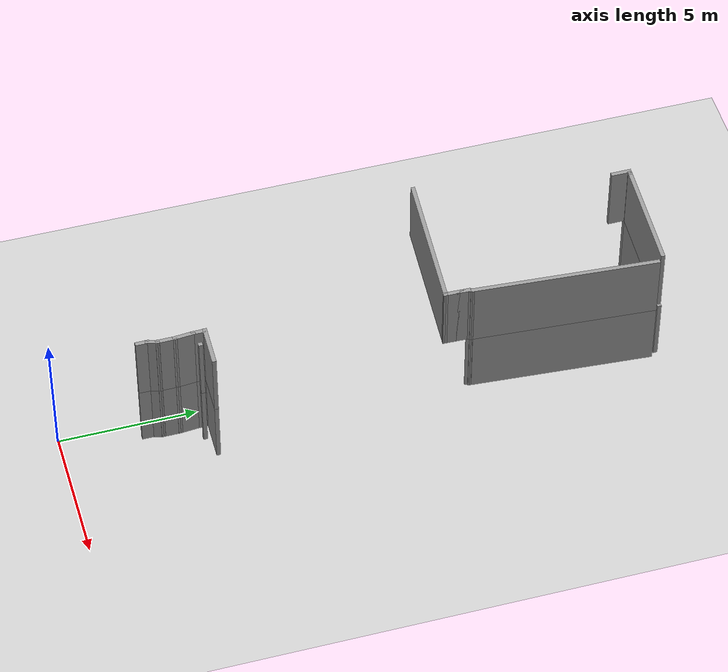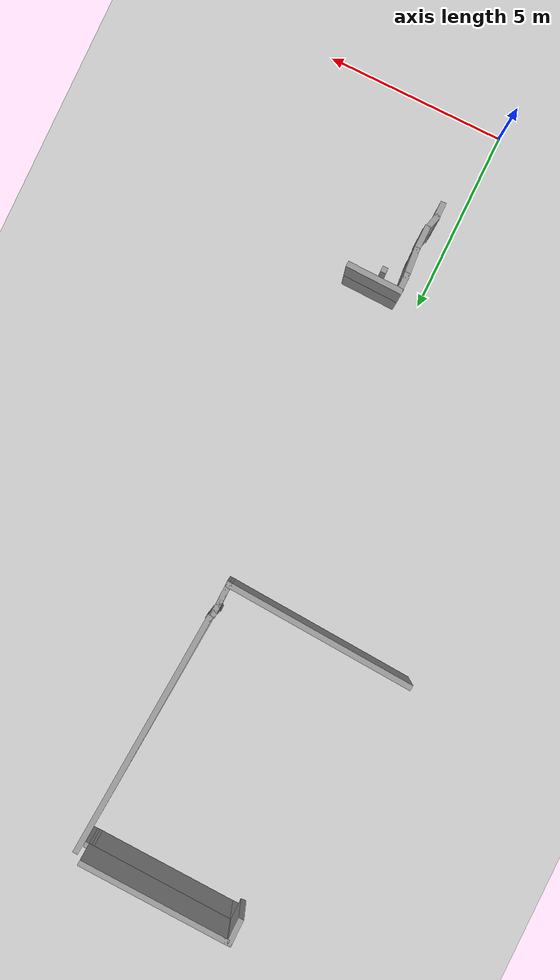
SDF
<sdf version="1.7">
 <world name="default">
  <model name="ground_plane">
   <static>1</static>
   <link name="link">
    <collision name="collision">
     <geometry><plane><normal>0 0 1</normal><size>100 100</size></plane></geometry>
     <surface>
      <contact><collide_bitmask>65535</collide_bitmask></contact>
      <friction><ode><mu>100</mu><mu2>50</mu2></ode></friction>
     </surface>
    </collision>
    <visual name="visual">
     <cast_shadows>0</cast_shadows>
     <geometry><plane><normal>0 0 1</normal><size>100 100</size></plane></geometry>
     <material>
      <script><uri>file://media/materials/scripts/gazebo.material</uri><name>Gazebo/Grey</name></script>
     </material>
    </visual>
   </link>
  </model>
  <model name="EnvDC01">
   <link name="Wall_100">
    <pose>-5.32892 11.2593 0 0 -0 0</pose>
    <visual name="Wall_100_Visual">
     <pose>0 0 1.25 0 -0 0</pose>
     <geometry><box><size>0.15 0.15 2.5</size></box></geometry>
     <material>
      <script><uri>file://media/materials/scripts/gazebo.material</uri><name>Gazebo/Grey</name></script>
      <ambient>1 1 1 1</ambient>
      <shader type="pixel"/>
     </material>
     <meta><layer>0</layer></meta>
    </visual>
    <collision name="Wall_100_Collision">
     <pose>0 0 1.25 0 -0 0</pose>
     <geometry><box><size>0.15 0.15 2.5</size></box></geometry>
     <surface>
      <friction>
       <ode><mu>1</mu><mu2>1</mu2><fdir1>0 0 0</fdir1><slip1>0</slip1><slip2>0</slip2></ode>
       <torsional>
        <coefficient>1</coefficient>
        <patch_radius>0</patch_radius>
        <surface_radius>0</surface_radius>
        <use_patch_radius>1</use_patch_radius>
        <ode><slip>0</slip></ode>
       </torsional>
      </friction>
      <bounce><restitution_coefficient>0</restitution_coefficient><threshold>1e+06</threshold></bounce>
      <contact>
       <collide_without_contact>0</collide_without_contact>
       <collide_without_contact_bitmask>1</collide_without_contact_bitmask>
       <collide_bitmask>1</collide_bitmask>
       <ode>
        <soft_cfm>0</soft_cfm>
        <soft_erp>0.2</soft_erp>
        <kp>1e+13</kp>
        <kd>1</kd>
        <max_vel>0.01</max_vel>
        <min_depth>0</min_depth>
       </ode>
       <bullet>
        <split_impulse>1</split_impulse>
        <split_impulse_penetration_threshold>-0.01</split_impulse_penetration_threshold>
        <soft_cfm>0</soft_cfm>
        <soft_erp>0.2</soft_erp>
        <kp>1e+13</kp>
        <kd>1</kd>
       </bullet>
      </contact>
     </surface>
    </collision>
   </link>
   <link name="Wall_102">
    <pose>-5.88941 11.3173 0 0 0 -1.5708</pose>
    <visual name="Wall_102_Visual">
     <pose>0 0 1.25 0 -0 0</pose>
     <geometry><box><size>0.5 0.15 2.5</size></box></geometry>
     <material>
      <script><uri>file://media/materials/scripts/gazebo.material</uri><name>Gazebo/Grey</name></script>
      <ambient>1 1 1 1</ambient>
      <shader type="pixel"/>
     </material>
     <meta><layer>0</layer></meta>
    </visual>
    <collision name="Wall_102_Collision">
     <pose>0 0 1.25 0 -0 0</pose>
     <geometry><box><size>0.5 0.15 2.5</size></box></geometry>
     <surface>
      <friction>
       <ode><mu>1</mu><mu2>1</mu2><fdir1>0 0 0</fdir1><slip1>0</slip1><slip2>0</slip2></ode>
       <torsional>
        <coefficient>1</coefficient>
        <patch_radius>0</patch_radius>
        <surface_radius>0</surface_radius>
        <use_patch_radius>1</use_patch_radius>
        <ode><slip>0</slip></ode>
       </torsional>
      </friction>
      <bounce><restitution_coefficient>0</restitution_coefficient><threshold>1e+06</threshold></bounce>
      <contact>
       <collide_without_contact>0</collide_without_contact>
       <collide_without_contact_bitmask>1</collide_without_contact_bitmask>
       <collide_bitmask>1</collide_bitmask>
       <ode>
        <soft_cfm>0</soft_cfm>
        <soft_erp>0.2</soft_erp>
        <kp>1e+13</kp>
        <kd>1</kd>
        <max_vel>0.01</max_vel>
        <min_depth>0</min_depth>
       </ode>
       <bullet>
        <split_impulse>1</split_impulse>
        <split_impulse_penetration_threshold>-0.01</split_impulse_penetration_threshold>
        <soft_cfm>0</soft_cfm>
        <soft_erp>0.2</soft_erp>
        <kp>1e+13</kp>
        <kd>1</kd>
       </bullet>
      </contact>
     </surface>
    </collision>
   </link>
   <link name="Wall_103">
    <pose>-5.86023 10.8116 0 0 0 -1.48755</pose>
    <visual name="Wall_103_Visual">
     <pose>0 0 1.25 0 -0 0</pose>
     <geometry><box><size>0.813803 0.15 2.5</size></box></geometry>
     <material>
      <script><uri>file://media/materials/scripts/gazebo.material</uri><name>Gazebo/Grey</name></script>
      <ambient>1 1 1 1</ambient>
      <shader type="pixel"/>
     </material>
     <meta><layer>0</layer></meta>
    </visual>
    <collision name="Wall_103_Collision">
     <pose>0 0 1.25 0 -0 0</pose>
     <geometry><box><size>0.813803 0.15 2.5</size></box></geometry>
     <surface>
      <friction>
       <ode><mu>1</mu><mu2>1</mu2><fdir1>0 0 0</fdir1><slip1>0</slip1><slip2>0</slip2></ode>
       <torsional>
        <coefficient>1</coefficient>
        <patch_radius>0</patch_radius>
        <surface_radius>0</surface_radius>
        <use_patch_radius>1</use_patch_radius>
        <ode><slip>0</slip></ode>
       </torsional>
      </friction>
      <bounce><restitution_coefficient>0</restitution_coefficient><threshold>1e+06</threshold></bounce>
      <contact>
       <collide_without_contact>0</collide_without_contact>
       <collide_without_contact_bitmask>1</collide_without_contact_bitmask>
       <collide_bitmask>1</collide_bitmask>
       <ode>
        <soft_cfm>0</soft_cfm>
        <soft_erp>0.2</soft_erp>
        <kp>1e+13</kp>
        <kd>1</kd>
        <max_vel>0.01</max_vel>
        <min_depth>0</min_depth>
       </ode>
       <bullet>
        <split_impulse>1</split_impulse>
        <split_impulse_penetration_threshold>-0.01</split_impulse_penetration_threshold>
        <soft_cfm>0</soft_cfm>
        <soft_erp>0.2</soft_erp>
        <kp>1e+13</kp>
        <kd>1</kd>
       </bullet>
      </contact>
     </surface>
    </collision>
   </link>
   <link name="Wall_104">
    <pose>-5.83264 10.1793 0 0 0 -1.5708</pose>
    <visual name="Wall_104_Visual">
     <pose>0 0 1.25 0 -0 0</pose>
     <geometry><box><size>0.75 0.15 2.5</size></box></geometry>
     <material>
      <script><uri>file://media/materials/scripts/gazebo.material</uri><name>Gazebo/Grey</name></script>
      <ambient>1 1 1 1</ambient>
      <shader type="pixel"/>
     </material>
     <meta><layer>0</layer></meta>
    </visual>
    <collision name="Wall_104_Collision">
     <pose>0 0 1.25 0 -0 0</pose>
     <geometry><box><size>0.75 0.15 2.5</size></box></geometry>
     <surface>
      <friction>
       <ode><mu>1</mu><mu2>1</mu2><fdir1>0 0 0</fdir1><slip1>0</slip1><slip2>0</slip2></ode>
       <torsional>
        <coefficient>1</coefficient>
        <patch_radius>0</patch_radius>
        <surface_radius>0</surface_radius>
        <use_patch_radius>1</use_patch_radius>
        <ode><slip>0</slip></ode>
       </torsional>
      </friction>
      <bounce><restitution_coefficient>0</restitution_coefficient><threshold>1e+06</threshold></bounce>
      <contact>
       <collide_without_contact>0</collide_without_contact>
       <collide_without_contact_bitmask>1</collide_without_contact_bitmask>
       <collide_bitmask>1</collide_bitmask>
       <ode>
        <soft_cfm>0</soft_cfm>
        <soft_erp>0.2</soft_erp>
        <kp>1e+13</kp>
        <kd>1</kd>
        <max_vel>0.01</max_vel>
        <min_depth>0</min_depth>
       </ode>
       <bullet>
        <split_impulse>1</split_impulse>
        <split_impulse_penetration_threshold>-0.01</split_impulse_penetration_threshold>
        <soft_cfm>0</soft_cfm>
        <soft_erp>0.2</soft_erp>
        <kp>1e+13</kp>
        <kd>1</kd>
       </bullet>
      </contact>
     </surface>
    </collision>
   </link>
   <link name="Wall_105">
    <pose>-5.87793 9.70942 0 0 0 -1.83143</pose>
    <visual name="Wall_105_Visual">
     <pose>0 0 1.25 0 -0 0</pose>
     <geometry><box><size>0.501524 0.15 2.5</size></box></geometry>
     <material>
      <script><uri>file://media/materials/scripts/gazebo.material</uri><name>Gazebo/Grey</name></script>
      <ambient>1 1 1 1</ambient>
      <shader type="pixel"/>
     </material>
     <meta><layer>0</layer></meta>
    </visual>
    <collision name="Wall_105_Collision">
     <pose>0 0 1.25 0 -0 0</pose>
     <geometry><box><size>0.501524 0.15 2.5</size></box></geometry>
     <surface>
      <friction>
       <ode><mu>1</mu><mu2>1</mu2><fdir1>0 0 0</fdir1><slip1>0</slip1><slip2>0</slip2></ode>
       <torsional>
        <coefficient>1</coefficient>
        <patch_radius>0</patch_radius>
        <surface_radius>0</surface_radius>
        <use_patch_radius>1</use_patch_radius>
        <ode><slip>0</slip></ode>
       </torsional>
      </friction>
      <bounce><restitution_coefficient>0</restitution_coefficient><threshold>1e+06</threshold></bounce>
      <contact>
       <collide_without_contact>0</collide_without_contact>
       <collide_without_contact_bitmask>1</collide_without_contact_bitmask>
       <collide_bitmask>1</collide_bitmask>
       <ode>
        <soft_cfm>0</soft_cfm>
        <soft_erp>0.2</soft_erp>
        <kp>1e+13</kp>
        <kd>1</kd>
        <max_vel>0.01</max_vel>
        <min_depth>0</min_depth>
       </ode>
       <bullet>
        <split_impulse>1</split_impulse>
        <split_impulse_penetration_threshold>-0.01</split_impulse_penetration_threshold>
        <soft_cfm>0</soft_cfm>
        <soft_erp>0.2</soft_erp>
        <kp>1e+13</kp>
        <kd>1</kd>
       </bullet>
      </contact>
     </surface>
    </collision>
   </link>
   <link name="Wall_106">
    <pose>-5.92322 9.3646 0 0 0 -1.5708</pose>
    <visual name="Wall_106_Visual">
     <pose>0 0 1.25 0 -0 0</pose>
     <geometry><box><size>0.5 0.15 2.5</size></box></geometry>
     <material>
      <script><uri>file://media/materials/scripts/gazebo.material</uri><name>Gazebo/Grey</name></script>
      <ambient>1 1 1 1</ambient>
      <shader type="pixel"/>
     </material>
     <meta><layer>0</layer></meta>
    </visual>
    <collision name="Wall_106_Collision">
     <pose>0 0 1.25 0 -0 0</pose>
     <geometry><box><size>0.5 0.15 2.5</size></box></geometry>
     <surface>
      <friction>
       <ode><mu>1</mu><mu2>1</mu2><fdir1>0 0 0</fdir1><slip1>0</slip1><slip2>0</slip2></ode>
       <torsional>
        <coefficient>1</coefficient>
        <patch_radius>0</patch_radius>
        <surface_radius>0</surface_radius>
        <use_patch_radius>1</use_patch_radius>
        <ode><slip>0</slip></ode>
       </torsional>
      </friction>
      <bounce><restitution_coefficient>0</restitution_coefficient><threshold>1e+06</threshold></bounce>
      <contact>
       <collide_without_contact>0</collide_without_contact>
       <collide_without_contact_bitmask>1</collide_without_contact_bitmask>
       <collide_bitmask>1</collide_bitmask>
       <ode>
        <soft_cfm>0</soft_cfm>
        <soft_erp>0.2</soft_erp>
        <kp>1e+13</kp>
        <kd>1</kd>
        <max_vel>0.01</max_vel>
        <min_depth>0</min_depth>
       </ode>
       <bullet>
        <split_impulse>1</split_impulse>
        <split_impulse_penetration_threshold>-0.01</split_impulse_penetration_threshold>
        <soft_cfm>0</soft_cfm>
        <soft_erp>0.2</soft_erp>
        <kp>1e+13</kp>
        <kd>1</kd>
       </bullet>
      </contact>
     </surface>
    </collision>
   </link>
   <link name="Wall_256">
    <pose>-9.08281 27.9178 0 0 -0 0</pose>
    <visual name="Wall_256_Visual">
     <pose>0 0 1.25 0 -0 0</pose>
     <geometry><box><size>0.25 0.15 2.5</size></box></geometry>
     <material>
      <script><uri>file://media/materials/scripts/gazebo.material</uri><name>Gazebo/Grey</name></script>
      <ambient>1 1 1 1</ambient>
      <shader type="pixel"/>
     </material>
     <meta><layer>0</layer></meta>
    </visual>
    <collision name="Wall_256_Collision">
     <pose>0 0 1.25 0 -0 0</pose>
     <geometry><box><size>0.25 0.15 2.5</size></box></geometry>
     <surface>
      <friction>
       <ode><mu>1</mu><mu2>1</mu2><fdir1>0 0 0</fdir1><slip1>0</slip1><slip2>0</slip2></ode>
       <torsional>
        <coefficient>1</coefficient>
        <patch_radius>0</patch_radius>
        <surface_radius>0</surface_radius>
        <use_patch_radius>1</use_patch_radius>
        <ode><slip>0</slip></ode>
       </torsional>
      </friction>
      <bounce><restitution_coefficient>0</restitution_coefficient><threshold>1e+06</threshold></bounce>
      <contact>
       <collide_without_contact>0</collide_without_contact>
       <collide_without_contact_bitmask>1</collide_without_contact_bitmask>
       <collide_bitmask>1</collide_bitmask>
       <ode>
        <soft_cfm>0</soft_cfm>
        <soft_erp>0.2</soft_erp>
        <kp>1e+13</kp>
        <kd>1</kd>
        <max_vel>0.01</max_vel>
        <min_depth>0</min_depth>
       </ode>
       <bullet>
        <split_impulse>1</split_impulse>
        <split_impulse_penetration_threshold>-0.01</split_impulse_penetration_threshold>
        <soft_cfm>0</soft_cfm>
        <soft_erp>0.2</soft_erp>
        <kp>1e+13</kp>
        <kd>1</kd>
       </bullet>
      </contact>
     </surface>
    </collision>
   </link>
   <link name="Wall_257">
    <pose>-7.00626 27.834 0 0 0 -0.041325</pose>
    <visual name="Wall_257_Visual">
     <pose>0 0 1.25 0 -0 0</pose>
     <geometry><box><size>4.20657 0.15 2.5</size></box></geometry>
     <material>
      <script><uri>file://media/materials/scripts/gazebo.material</uri><name>Gazebo/Grey</name></script>
      <ambient>1 1 1 1</ambient>
      <shader type="pixel"/>
     </material>
     <meta><layer>0</layer></meta>
    </visual>
    <collision name="Wall_257_Collision">
     <pose>0 0 1.25 0 -0 0</pose>
     <geometry><box><size>4.20657 0.15 2.5</size></box></geometry>
     <surface>
      <friction>
       <ode><mu>1</mu><mu2>1</mu2><fdir1>0 0 0</fdir1><slip1>0</slip1><slip2>0</slip2></ode>
       <torsional>
        <coefficient>1</coefficient>
        <patch_radius>0</patch_radius>
        <surface_radius>0</surface_radius>
        <use_patch_radius>1</use_patch_radius>
        <ode><slip>0</slip></ode>
       </torsional>
      </friction>
      <bounce><restitution_coefficient>0</restitution_coefficient><threshold>1e+06</threshold></bounce>
      <contact>
       <collide_without_contact>0</collide_without_contact>
       <collide_without_contact_bitmask>1</collide_without_contact_bitmask>
       <collide_bitmask>1</collide_bitmask>
       <ode>
        <soft_cfm>0</soft_cfm>
        <soft_erp>0.2</soft_erp>
        <kp>1e+13</kp>
        <kd>1</kd>
        <max_vel>0.01</max_vel>
        <min_depth>0</min_depth>
       </ode>
       <bullet>
        <split_impulse>1</split_impulse>
        <split_impulse_penetration_threshold>-0.01</split_impulse_penetration_threshold>
        <soft_cfm>0</soft_cfm>
        <soft_erp>0.2</soft_erp>
        <kp>1e+13</kp>
        <kd>1</kd>
       </bullet>
      </contact>
     </surface>
    </collision>
   </link>
   <link name="Wall_258">
    <pose>-4.9297 27.7502 0 0 -0 0</pose>
    <visual name="Wall_258_Visual">
     <pose>0 0 1.25 0 -0 0</pose>
     <geometry><box><size>0.25 0.15 2.5</size></box></geometry>
     <material>
      <script><uri>file://media/materials/scripts/gazebo.material</uri><name>Gazebo/Grey</name></script>
      <ambient>1 1 1 1</ambient>
      <shader type="pixel"/>
     </material>
     <meta><layer>0</layer></meta>
    </visual>
    <collision name="Wall_258_Collision">
     <pose>0 0 1.25 0 -0 0</pose>
     <geometry><box><size>0.25 0.15 2.5</size></box></geometry>
     <surface>
      <friction>
       <ode><mu>1</mu><mu2>1</mu2><fdir1>0 0 0</fdir1><slip1>0</slip1><slip2>0</slip2></ode>
       <torsional>
        <coefficient>1</coefficient>
        <patch_radius>0</patch_radius>
        <surface_radius>0</surface_radius>
        <use_patch_radius>1</use_patch_radius>
        <ode><slip>0</slip></ode>
       </torsional>
      </friction>
      <bounce><restitution_coefficient>0</restitution_coefficient><threshold>1e+06</threshold></bounce>
      <contact>
       <collide_without_contact>0</collide_without_contact>
       <collide_without_contact_bitmask>1</collide_without_contact_bitmask>
       <collide_bitmask>1</collide_bitmask>
       <ode>
        <soft_cfm>0</soft_cfm>
        <soft_erp>0.2</soft_erp>
        <kp>1e+13</kp>
        <kd>1</kd>
        <max_vel>0.01</max_vel>
        <min_depth>0</min_depth>
       </ode>
       <bullet>
        <split_impulse>1</split_impulse>
        <split_impulse_penetration_threshold>-0.01</split_impulse_penetration_threshold>
        <soft_cfm>0</soft_cfm>
        <soft_erp>0.2</soft_erp>
        <kp>1e+13</kp>
        <kd>1</kd>
       </bullet>
      </contact>
     </surface>
    </collision>
   </link>
   <link name="Wall_261">
    <pose>-4.96918 24.2046 0 0 0 -1.64252</pose>
    <visual name="Wall_261_Visual">
     <pose>0 0 1.25 0 -0 0</pose>
     <geometry><box><size>6.76321 0.15 2.5</size></box></geometry>
     <material>
      <script><uri>file://media/materials/scripts/gazebo.material</uri><name>Gazebo/Grey</name></script>
      <ambient>1 1 1 1</ambient>
      <shader type="pixel"/>
     </material>
     <meta><layer>0</layer></meta>
    </visual>
    <collision name="Wall_261_Collision">
     <pose>0 0 1.25 0 -0 0</pose>
     <geometry><box><size>6.76321 0.15 2.5</size></box></geometry>
     <surface>
      <friction>
       <ode><mu>1</mu><mu2>1</mu2><fdir1>0 0 0</fdir1><slip1>0</slip1><slip2>0</slip2></ode>
       <torsional>
        <coefficient>1</coefficient>
        <patch_radius>0</patch_radius>
        <surface_radius>0</surface_radius>
        <use_patch_radius>1</use_patch_radius>
        <ode><slip>0</slip></ode>
       </torsional>
      </friction>
      <bounce><restitution_coefficient>0</restitution_coefficient><threshold>1e+06</threshold></bounce>
      <contact>
       <collide_without_contact>0</collide_without_contact>
       <collide_without_contact_bitmask>1</collide_without_contact_bitmask>
       <collide_bitmask>1</collide_bitmask>
       <ode>
        <soft_cfm>0</soft_cfm>
        <soft_erp>0.2</soft_erp>
        <kp>1e+13</kp>
        <kd>1</kd>
        <max_vel>0.01</max_vel>
        <min_depth>0</min_depth>
       </ode>
       <bullet>
        <split_impulse>1</split_impulse>
        <split_impulse_penetration_threshold>-0.01</split_impulse_penetration_threshold>
        <soft_cfm>0</soft_cfm>
        <soft_erp>0.2</soft_erp>
        <kp>1e+13</kp>
        <kd>1</kd>
       </bullet>
      </contact>
     </surface>
    </collision>
   </link>
   <link name="Wall_262">
    <pose>-5.23115 20.8632 0 0 0 -2.0944</pose>
    <visual name="Wall_262_Visual">
     <pose>0 0 1.25 0 -0 0</pose>
     <geometry><box><size>0.25 0.15 2.5</size></box></geometry>
     <material>
      <script><uri>file://media/materials/scripts/gazebo.material</uri><name>Gazebo/Grey</name></script>
      <ambient>1 1 1 1</ambient>
      <shader type="pixel"/>
     </material>
     <meta><layer>0</layer></meta>
    </visual>
    <collision name="Wall_262_Collision">
     <pose>0 0 1.25 0 -0 0</pose>
     <geometry><box><size>0.25 0.15 2.5</size></box></geometry>
     <surface>
      <friction>
       <ode><mu>1</mu><mu2>1</mu2><fdir1>0 0 0</fdir1><slip1>0</slip1><slip2>0</slip2></ode>
       <torsional>
        <coefficient>1</coefficient>
        <patch_radius>0</patch_radius>
        <surface_radius>0</surface_radius>
        <use_patch_radius>1</use_patch_radius>
        <ode><slip>0</slip></ode>
       </torsional>
      </friction>
      <bounce><restitution_coefficient>0</restitution_coefficient><threshold>1e+06</threshold></bounce>
      <contact>
       <collide_without_contact>0</collide_without_contact>
       <collide_without_contact_bitmask>1</collide_without_contact_bitmask>
       <collide_bitmask>1</collide_bitmask>
       <ode>
        <soft_cfm>0</soft_cfm>
        <soft_erp>0.2</soft_erp>
        <kp>1e+13</kp>
        <kd>1</kd>
        <max_vel>0.01</max_vel>
        <min_depth>0</min_depth>
       </ode>
       <bullet>
        <split_impulse>1</split_impulse>
        <split_impulse_penetration_threshold>-0.01</split_impulse_penetration_threshold>
        <soft_cfm>0</soft_cfm>
        <soft_erp>0.2</soft_erp>
        <kp>1e+13</kp>
        <kd>1</kd>
       </bullet>
      </contact>
     </surface>
    </collision>
   </link>
   <link name="Wall_307">
    <pose>-5.20338 11.5416 2.5 0 -0 3.1167</pose>
    <visual name="Wall_307_Visual">
     <pose>0 0 1.25 0 -0 0</pose>
     <geometry><box><size>1.54368 0.15 2.5</size></box></geometry>
     <material>
      <script><uri>file://media/materials/scripts/gazebo.material</uri><name>Gazebo/Grey</name></script>
      <ambient>1 1 1 1</ambient>
      <shader type="pixel"/>
     </material>
     <meta><layer>1</layer></meta>
    </visual>
    <collision name="Wall_307_Collision">
     <pose>0 0 1.25 0 -0 0</pose>
     <geometry><box><size>1.54368 0.15 2.5</size></box></geometry>
     <surface>
      <friction>
       <ode><mu>1</mu><mu2>1</mu2><fdir1>0 0 0</fdir1><slip1>0</slip1><slip2>0</slip2></ode>
       <torsional>
        <coefficient>1</coefficient>
        <patch_radius>0</patch_radius>
        <surface_radius>0</surface_radius>
        <use_patch_radius>1</use_patch_radius>
        <ode><slip>0</slip></ode>
       </torsional>
      </friction>
      <bounce><restitution_coefficient>0</restitution_coefficient><threshold>1e+06</threshold></bounce>
      <contact>
       <collide_without_contact>0</collide_without_contact>
       <collide_without_contact_bitmask>1</collide_without_contact_bitmask>
       <collide_bitmask>1</collide_bitmask>
       <ode>
        <soft_cfm>0</soft_cfm>
        <soft_erp>0.2</soft_erp>
        <kp>1e+13</kp>
        <kd>1</kd>
        <max_vel>0.01</max_vel>
        <min_depth>0</min_depth>
       </ode>
       <bullet>
        <split_impulse>1</split_impulse>
        <split_impulse_penetration_threshold>-0.01</split_impulse_penetration_threshold>
        <soft_cfm>0</soft_cfm>
        <soft_erp>0.2</soft_erp>
        <kp>1e+13</kp>
        <kd>1</kd>
       </bullet>
      </contact>
     </surface>
    </collision>
   </link>
   <link name="Wall_308">
    <pose>-5.32892 11.2593 2.5 0 -0 0</pose>
    <visual name="Wall_308_Visual">
     <pose>0 0 1.25 0 -0 0</pose>
     <geometry><box><size>0.15 0.15 2.5</size></box></geometry>
     <material>
      <script><uri>file://media/materials/scripts/gazebo.material</uri><name>Gazebo/Grey</name></script>
      <ambient>1 1 1 1</ambient>
      <shader type="pixel"/>
     </material>
     <meta><layer>1</layer></meta>
    </visual>
    <collision name="Wall_308_Collision">
     <pose>0 0 1.25 0 -0 0</pose>
     <geometry><box><size>0.15 0.15 2.5</size></box></geometry>
     <surface>
      <friction>
       <ode><mu>1</mu><mu2>1</mu2><fdir1>0 0 0</fdir1><slip1>0</slip1><slip2>0</slip2></ode>
       <torsional>
        <coefficient>1</coefficient>
        <patch_radius>0</patch_radius>
        <surface_radius>0</surface_radius>
        <use_patch_radius>1</use_patch_radius>
        <ode><slip>0</slip></ode>
       </torsional>
      </friction>
      <bounce><restitution_coefficient>0</restitution_coefficient><threshold>1e+06</threshold></bounce>
      <contact>
       <collide_without_contact>0</collide_without_contact>
       <collide_without_contact_bitmask>1</collide_without_contact_bitmask>
       <collide_bitmask>1</collide_bitmask>
       <ode>
        <soft_cfm>0</soft_cfm>
        <soft_erp>0.2</soft_erp>
        <kp>1e+13</kp>
        <kd>1</kd>
        <max_vel>0.01</max_vel>
        <min_depth>0</min_depth>
       </ode>
       <bullet>
        <split_impulse>1</split_impulse>
        <split_impulse_penetration_threshold>-0.01</split_impulse_penetration_threshold>
        <soft_cfm>0</soft_cfm>
        <soft_erp>0.2</soft_erp>
        <kp>1e+13</kp>
        <kd>1</kd>
       </bullet>
      </contact>
     </surface>
    </collision>
   </link>
   <link name="Wall_309">
    <pose>-5.88941 11.3173 2.5 0 0 -1.5708</pose>
    <visual name="Wall_309_Visual">
     <pose>0 0 1.25 0 -0 0</pose>
     <geometry><box><size>0.5 0.15 2.5</size></box></geometry>
     <material>
      <script><uri>file://media/materials/scripts/gazebo.material</uri><name>Gazebo/Grey</name></script>
      <ambient>1 1 1 1</ambient>
      <shader type="pixel"/>
     </material>
     <meta><layer>1</layer></meta>
    </visual>
    <collision name="Wall_309_Collision">
     <pose>0 0 1.25 0 -0 0</pose>
     <geometry><box><size>0.5 0.15 2.5</size></box></geometry>
     <surface>
      <friction>
       <ode><mu>1</mu><mu2>1</mu2><fdir1>0 0 0</fdir1><slip1>0</slip1><slip2>0</slip2></ode>
       <torsional>
        <coefficient>1</coefficient>
        <patch_radius>0</patch_radius>
        <surface_radius>0</surface_radius>
        <use_patch_radius>1</use_patch_radius>
        <ode><slip>0</slip></ode>
       </torsional>
      </friction>
      <bounce><restitution_coefficient>0</restitution_coefficient><threshold>1e+06</threshold></bounce>
      <contact>
       <collide_without_contact>0</collide_without_contact>
       <collide_without_contact_bitmask>1</collide_without_contact_bitmask>
       <collide_bitmask>1</collide_bitmask>
       <ode>
        <soft_cfm>0</soft_cfm>
        <soft_erp>0.2</soft_erp>
        <kp>1e+13</kp>
        <kd>1</kd>
        <max_vel>0.01</max_vel>
        <min_depth>0</min_depth>
       </ode>
       <bullet>
        <split_impulse>1</split_impulse>
        <split_impulse_penetration_threshold>-0.01</split_impulse_penetration_threshold>
        <soft_cfm>0</soft_cfm>
        <soft_erp>0.2</soft_erp>
        <kp>1e+13</kp>
        <kd>1</kd>
       </bullet>
      </contact>
     </surface>
    </collision>
   </link>
   <link name="Wall_310">
    <pose>-5.86023 10.8116 2.5 0 0 -1.48755</pose>
    <visual name="Wall_310_Visual">
     <pose>0 0 1.25 0 -0 0</pose>
     <geometry><box><size>0.813803 0.15 2.5</size></box></geometry>
     <material>
      <script><uri>file://media/materials/scripts/gazebo.material</uri><name>Gazebo/Grey</name></script>
      <ambient>1 1 1 1</ambient>
      <shader type="pixel"/>
     </material>
     <meta><layer>1</layer></meta>
    </visual>
    <collision name="Wall_310_Collision">
     <pose>0 0 1.25 0 -0 0</pose>
     <geometry><box><size>0.813803 0.15 2.5</size></box></geometry>
     <surface>
      <friction>
       <ode><mu>1</mu><mu2>1</mu2><fdir1>0 0 0</fdir1><slip1>0</slip1><slip2>0</slip2></ode>
       <torsional>
        <coefficient>1</coefficient>
        <patch_radius>0</patch_radius>
        <surface_radius>0</surface_radius>
        <use_patch_radius>1</use_patch_radius>
        <ode><slip>0</slip></ode>
       </torsional>
      </friction>
      <bounce><restitution_coefficient>0</restitution_coefficient><threshold>1e+06</threshold></bounce>
      <contact>
       <collide_without_contact>0</collide_without_contact>
       <collide_without_contact_bitmask>1</collide_without_contact_bitmask>
       <collide_bitmask>1</collide_bitmask>
       <ode>
        <soft_cfm>0</soft_cfm>
        <soft_erp>0.2</soft_erp>
        <kp>1e+13</kp>
        <kd>1</kd>
        <max_vel>0.01</max_vel>
        <min_depth>0</min_depth>
       </ode>
       <bullet>
        <split_impulse>1</split_impulse>
        <split_impulse_penetration_threshold>-0.01</split_impulse_penetration_threshold>
        <soft_cfm>0</soft_cfm>
        <soft_erp>0.2</soft_erp>
        <kp>1e+13</kp>
        <kd>1</kd>
       </bullet>
      </contact>
     </surface>
    </collision>
   </link>
   <link name="Wall_311">
    <pose>-5.83264 10.1793 2.5 0 0 -1.5708</pose>
    <visual name="Wall_311_Visual">
     <pose>0 0 1.25 0 -0 0</pose>
     <geometry><box><size>0.75 0.15 2.5</size></box></geometry>
     <material>
      <script><uri>file://media/materials/scripts/gazebo.material</uri><name>Gazebo/Grey</name></script>
      <ambient>1 1 1 1</ambient>
      <shader type="pixel"/>
     </material>
     <meta><layer>1</layer></meta>
    </visual>
    <collision name="Wall_311_Collision">
     <pose>0 0 1.25 0 -0 0</pose>
     <geometry><box><size>0.75 0.15 2.5</size></box></geometry>
     <surface>
      <friction>
       <ode><mu>1</mu><mu2>1</mu2><fdir1>0 0 0</fdir1><slip1>0</slip1><slip2>0</slip2></ode>
       <torsional>
        <coefficient>1</coefficient>
        <patch_radius>0</patch_radius>
        <surface_radius>0</surface_radius>
        <use_patch_radius>1</use_patch_radius>
        <ode><slip>0</slip></ode>
       </torsional>
      </friction>
      <bounce><restitution_coefficient>0</restitution_coefficient><threshold>1e+06</threshold></bounce>
      <contact>
       <collide_without_contact>0</collide_without_contact>
       <collide_without_contact_bitmask>1</collide_without_contact_bitmask>
       <collide_bitmask>1</collide_bitmask>
       <ode>
        <soft_cfm>0</soft_cfm>
        <soft_erp>0.2</soft_erp>
        <kp>1e+13</kp>
        <kd>1</kd>
        <max_vel>0.01</max_vel>
        <min_depth>0</min_depth>
       </ode>
       <bullet>
        <split_impulse>1</split_impulse>
        <split_impulse_penetration_threshold>-0.01</split_impulse_penetration_threshold>
        <soft_cfm>0</soft_cfm>
        <soft_erp>0.2</soft_erp>
        <kp>1e+13</kp>
        <kd>1</kd>
       </bullet>
      </contact>
     </surface>
    </collision>
   </link>
   <link name="Wall_312">
    <pose>-5.87793 9.70942 2.5 0 0 -1.83143</pose>
    <visual name="Wall_312_Visual">
     <pose>0 0 1.25 0 -0 0</pose>
     <geometry><box><size>0.501524 0.15 2.5</size></box></geometry>
     <material>
      <script><uri>file://media/materials/scripts/gazebo.material</uri><name>Gazebo/Grey</name></script>
      <ambient>1 1 1 1</ambient>
      <shader type="pixel"/>
     </material>
     <meta><layer>1</layer></meta>
    </visual>
    <collision name="Wall_312_Collision">
     <pose>0 0 1.25 0 -0 0</pose>
     <geometry><box><size>0.501524 0.15 2.5</size></box></geometry>
     <surface>
      <friction>
       <ode><mu>1</mu><mu2>1</mu2><fdir1>0 0 0</fdir1><slip1>0</slip1><slip2>0</slip2></ode>
       <torsional>
        <coefficient>1</coefficient>
        <patch_radius>0</patch_radius>
        <surface_radius>0</surface_radius>
        <use_patch_radius>1</use_patch_radius>
        <ode><slip>0</slip></ode>
       </torsional>
      </friction>
      <bounce><restitution_coefficient>0</restitution_coefficient><threshold>1e+06</threshold></bounce>
      <contact>
       <collide_without_contact>0</collide_without_contact>
       <collide_without_contact_bitmask>1</collide_without_contact_bitmask>
       <collide_bitmask>1</collide_bitmask>
       <ode>
        <soft_cfm>0</soft_cfm>
        <soft_erp>0.2</soft_erp>
        <kp>1e+13</kp>
        <kd>1</kd>
        <max_vel>0.01</max_vel>
        <min_depth>0</min_depth>
       </ode>
       <bullet>
        <split_impulse>1</split_impulse>
        <split_impulse_penetration_threshold>-0.01</split_impulse_penetration_threshold>
        <soft_cfm>0</soft_cfm>
        <soft_erp>0.2</soft_erp>
        <kp>1e+13</kp>
        <kd>1</kd>
       </bullet>
      </contact>
     </surface>
    </collision>
   </link>
   <link name="Wall_313">
    <pose>-5.92322 9.3646 2.5 0 0 -1.5708</pose>
    <visual name="Wall_313_Visual">
     <pose>0 0 1.25 0 -0 0</pose>
     <geometry><box><size>0.5 0.15 2.5</size></box></geometry>
     <material>
      <script><uri>file://media/materials/scripts/gazebo.material</uri><name>Gazebo/Grey</name></script>
      <ambient>1 1 1 1</ambient>
      <shader type="pixel"/>
     </material>
     <meta><layer>1</layer></meta>
    </visual>
    <collision name="Wall_313_Collision">
     <pose>0 0 1.25 0 -0 0</pose>
     <geometry><box><size>0.5 0.15 2.5</size></box></geometry>
     <surface>
      <friction>
       <ode><mu>1</mu><mu2>1</mu2><fdir1>0 0 0</fdir1><slip1>0</slip1><slip2>0</slip2></ode>
       <torsional>
        <coefficient>1</coefficient>
        <patch_radius>0</patch_radius>
        <surface_radius>0</surface_radius>
        <use_patch_radius>1</use_patch_radius>
        <ode><slip>0</slip></ode>
       </torsional>
      </friction>
      <bounce><restitution_coefficient>0</restitution_coefficient><threshold>1e+06</threshold></bounce>
      <contact>
       <collide_without_contact>0</collide_without_contact>
       <collide_without_contact_bitmask>1</collide_without_contact_bitmask>
       <collide_bitmask>1</collide_bitmask>
       <ode>
        <soft_cfm>0</soft_cfm>
        <soft_erp>0.2</soft_erp>
        <kp>1e+13</kp>
        <kd>1</kd>
        <max_vel>0.01</max_vel>
        <min_depth>0</min_depth>
       </ode>
       <bullet>
        <split_impulse>1</split_impulse>
        <split_impulse_penetration_threshold>-0.01</split_impulse_penetration_threshold>
        <soft_cfm>0</soft_cfm>
        <soft_erp>0.2</soft_erp>
        <kp>1e+13</kp>
        <kd>1</kd>
       </bullet>
      </contact>
     </surface>
    </collision>
   </link>
   <link name="Wall_416">
    <pose>-9.13281 27.6178 2.5 0 -0 1.5708</pose>
    <visual name="Wall_416_Visual">
     <pose>0 0 1.25 0 -0 0</pose>
     <geometry><box><size>0.75 0.15 2.5</size></box></geometry>
     <material>
      <script><uri>file://media/materials/scripts/gazebo.material</uri><name>Gazebo/Grey</name></script>
      <ambient>1 1 1 1</ambient>
      <shader type="pixel"/>
     </material>
     <meta><layer>1</layer></meta>
    </visual>
    <collision name="Wall_416_Collision">
     <pose>0 0 1.25 0 -0 0</pose>
     <geometry><box><size>0.75 0.15 2.5</size></box></geometry>
     <surface>
      <friction>
       <ode><mu>1</mu><mu2>1</mu2><fdir1>0 0 0</fdir1><slip1>0</slip1><slip2>0</slip2></ode>
       <torsional>
        <coefficient>1</coefficient>
        <patch_radius>0</patch_radius>
        <surface_radius>0</surface_radius>
        <use_patch_radius>1</use_patch_radius>
        <ode><slip>0</slip></ode>
       </torsional>
      </friction>
      <bounce><restitution_coefficient>0</restitution_coefficient><threshold>1e+06</threshold></bounce>
      <contact>
       <collide_without_contact>0</collide_without_contact>
       <collide_without_contact_bitmask>1</collide_without_contact_bitmask>
       <collide_bitmask>1</collide_bitmask>
       <ode>
        <soft_cfm>0</soft_cfm>
        <soft_erp>0.2</soft_erp>
        <kp>1e+13</kp>
        <kd>1</kd>
        <max_vel>0.01</max_vel>
        <min_depth>0</min_depth>
       </ode>
       <bullet>
        <split_impulse>1</split_impulse>
        <split_impulse_penetration_threshold>-0.01</split_impulse_penetration_threshold>
        <soft_cfm>0</soft_cfm>
        <soft_erp>0.2</soft_erp>
        <kp>1e+13</kp>
        <kd>1</kd>
       </bullet>
      </contact>
     </surface>
    </collision>
   </link>
   <link name="Wall_417">
    <pose>-9.08281 27.9178 2.5 0 -0 0</pose>
    <visual name="Wall_417_Visual">
     <pose>0 0 1.25 0 -0 0</pose>
     <geometry><box><size>0.25 0.15 2.5</size></box></geometry>
     <material>
      <script><uri>file://media/materials/scripts/gazebo.material</uri><name>Gazebo/Grey</name></script>
      <ambient>1 1 1 1</ambient>
      <shader type="pixel"/>
     </material>
     <meta><layer>1</layer></meta>
    </visual>
    <collision name="Wall_417_Collision">
     <pose>0 0 1.25 0 -0 0</pose>
     <geometry><box><size>0.25 0.15 2.5</size></box></geometry>
     <surface>
      <friction>
       <ode><mu>1</mu><mu2>1</mu2><fdir1>0 0 0</fdir1><slip1>0</slip1><slip2>0</slip2></ode>
       <torsional>
        <coefficient>1</coefficient>
        <patch_radius>0</patch_radius>
        <surface_radius>0</surface_radius>
        <use_patch_radius>1</use_patch_radius>
        <ode><slip>0</slip></ode>
       </torsional>
      </friction>
      <bounce><restitution_coefficient>0</restitution_coefficient><threshold>1e+06</threshold></bounce>
      <contact>
       <collide_without_contact>0</collide_without_contact>
       <collide_without_contact_bitmask>1</collide_without_contact_bitmask>
       <collide_bitmask>1</collide_bitmask>
       <ode>
        <soft_cfm>0</soft_cfm>
        <soft_erp>0.2</soft_erp>
        <kp>1e+13</kp>
        <kd>1</kd>
        <max_vel>0.01</max_vel>
        <min_depth>0</min_depth>
       </ode>
       <bullet>
        <split_impulse>1</split_impulse>
        <split_impulse_penetration_threshold>-0.01</split_impulse_penetration_threshold>
        <soft_cfm>0</soft_cfm>
        <soft_erp>0.2</soft_erp>
        <kp>1e+13</kp>
        <kd>1</kd>
       </bullet>
      </contact>
     </surface>
    </collision>
   </link>
   <link name="Wall_418">
    <pose>-7.00626 27.834 2.5 0 0 -0.041325</pose>
    <visual name="Wall_418_Visual">
     <pose>0 0 1.25 0 -0 0</pose>
     <geometry><box><size>4.20657 0.15 2.5</size></box></geometry>
     <material>
      <script><uri>file://media/materials/scripts/gazebo.material</uri><name>Gazebo/Grey</name></script>
      <ambient>1 1 1 1</ambient>
      <shader type="pixel"/>
     </material>
     <meta><layer>1</layer></meta>
    </visual>
    <collision name="Wall_418_Collision">
     <pose>0 0 1.25 0 -0 0</pose>
     <geometry><box><size>4.20657 0.15 2.5</size></box></geometry>
     <surface>
      <friction>
       <ode><mu>1</mu><mu2>1</mu2><fdir1>0 0 0</fdir1><slip1>0</slip1><slip2>0</slip2></ode>
       <torsional>
        <coefficient>1</coefficient>
        <patch_radius>0</patch_radius>
        <surface_radius>0</surface_radius>
        <use_patch_radius>1</use_patch_radius>
        <ode><slip>0</slip></ode>
       </torsional>
      </friction>
      <bounce><restitution_coefficient>0</restitution_coefficient><threshold>1e+06</threshold></bounce>
      <contact>
       <collide_without_contact>0</collide_without_contact>
       <collide_without_contact_bitmask>1</collide_without_contact_bitmask>
       <collide_bitmask>1</collide_bitmask>
       <ode>
        <soft_cfm>0</soft_cfm>
        <soft_erp>0.2</soft_erp>
        <kp>1e+13</kp>
        <kd>1</kd>
        <max_vel>0.01</max_vel>
        <min_depth>0</min_depth>
       </ode>
       <bullet>
        <split_impulse>1</split_impulse>
        <split_impulse_penetration_threshold>-0.01</split_impulse_penetration_threshold>
        <soft_cfm>0</soft_cfm>
        <soft_erp>0.2</soft_erp>
        <kp>1e+13</kp>
        <kd>1</kd>
       </bullet>
      </contact>
     </surface>
    </collision>
   </link>
   <link name="Wall_421">
    <pose>-4.95651 24.2016 2.5 0 0 -1.63864</pose>
    <visual name="Wall_421_Visual">
     <pose>0 0 1.25 0 -0 0</pose>
     <geometry><box><size>6.76739 0.15 2.5</size></box></geometry>
     <material>
      <script><uri>file://media/materials/scripts/gazebo.material</uri><name>Gazebo/Grey</name></script>
      <ambient>1 1 1 1</ambient>
      <shader type="pixel"/>
     </material>
     <meta><layer>1</layer></meta>
    </visual>
    <collision name="Wall_421_Collision">
     <pose>0 0 1.25 0 -0 0</pose>
     <geometry><box><size>6.76739 0.15 2.5</size></box></geometry>
     <surface>
      <friction>
       <ode><mu>1</mu><mu2>1</mu2><fdir1>0 0 0</fdir1><slip1>0</slip1><slip2>0</slip2></ode>
       <torsional>
        <coefficient>1</coefficient>
        <patch_radius>0</patch_radius>
        <surface_radius>0</surface_radius>
        <use_patch_radius>1</use_patch_radius>
        <ode><slip>0</slip></ode>
       </torsional>
      </friction>
      <bounce><restitution_coefficient>0</restitution_coefficient><threshold>1e+06</threshold></bounce>
      <contact>
       <collide_without_contact>0</collide_without_contact>
       <collide_without_contact_bitmask>1</collide_without_contact_bitmask>
       <collide_bitmask>1</collide_bitmask>
       <ode>
        <soft_cfm>0</soft_cfm>
        <soft_erp>0.2</soft_erp>
        <kp>1e+13</kp>
        <kd>1</kd>
        <max_vel>0.01</max_vel>
        <min_depth>0</min_depth>
       </ode>
       <bullet>
        <split_impulse>1</split_impulse>
        <split_impulse_penetration_threshold>-0.01</split_impulse_penetration_threshold>
        <soft_cfm>0</soft_cfm>
        <soft_erp>0.2</soft_erp>
        <kp>1e+13</kp>
        <kd>1</kd>
       </bullet>
      </contact>
     </surface>
    </collision>
   </link>
   <link name="Wall_422">
    <pose>-5.20581 20.8316 2.5 0 0 -1.93303</pose>
    <visual name="Wall_422_Visual">
     <pose>0 0 1.25 0 -0 0</pose>
     <geometry><box><size>0.291098 0.15 2.5</size></box></geometry>
     <material>
      <script><uri>file://media/materials/scripts/gazebo.material</uri><name>Gazebo/Grey</name></script>
      <ambient>1 1 1 1</ambient>
      <shader type="pixel"/>
     </material>
     <meta><layer>1</layer></meta>
    </visual>
    <collision name="Wall_422_Collision">
     <pose>0 0 1.25 0 -0 0</pose>
     <geometry><box><size>0.291098 0.15 2.5</size></box></geometry>
     <surface>
      <friction>
       <ode><mu>1</mu><mu2>1</mu2><fdir1>0 0 0</fdir1><slip1>0</slip1><slip2>0</slip2></ode>
       <torsional>
        <coefficient>1</coefficient>
        <patch_radius>0</patch_radius>
        <surface_radius>0</surface_radius>
        <use_patch_radius>1</use_patch_radius>
        <ode><slip>0</slip></ode>
       </torsional>
      </friction>
      <bounce><restitution_coefficient>0</restitution_coefficient><threshold>1e+06</threshold></bounce>
      <contact>
       <collide_without_contact>0</collide_without_contact>
       <collide_without_contact_bitmask>1</collide_without_contact_bitmask>
       <collide_bitmask>1</collide_bitmask>
       <ode>
        <soft_cfm>0</soft_cfm>
        <soft_erp>0.2</soft_erp>
        <kp>1e+13</kp>
        <kd>1</kd>
        <max_vel>0.01</max_vel>
        <min_depth>0</min_depth>
       </ode>
       <bullet>
        <split_impulse>1</split_impulse>
        <split_impulse_penetration_threshold>-0.01</split_impulse_penetration_threshold>
        <soft_cfm>0</soft_cfm>
        <soft_erp>0.2</soft_erp>
        <kp>1e+13</kp>
        <kd>1</kd>
       </bullet>
      </contact>
     </surface>
    </collision>
   </link>
   <link name="Wall_428">
    <pose>-7.81335 20.1117 2.5 0 0 -0.064207</pose>
    <visual name="Wall_428_Visual">
     <pose>0 0 1.25 0 -0 0</pose>
     <geometry><box><size>5.27495 0.15 2.5</size></box></geometry>
     <material>
      <script><uri>file://media/materials/scripts/gazebo.material</uri><name>Gazebo/Grey</name></script>
      <ambient>1 1 1 1</ambient>
      <shader type="pixel"/>
     </material>
     <meta><layer>1</layer></meta>
    </visual>
    <collision name="Wall_428_Collision">
     <pose>0 0 1.25 0 -0 0</pose>
     <geometry><box><size>5.27495 0.15 2.5</size></box></geometry>
     <surface>
      <friction>
       <ode><mu>1</mu><mu2>1</mu2><fdir1>0 0 0</fdir1><slip1>0</slip1><slip2>0</slip2></ode>
       <torsional>
        <coefficient>1</coefficient>
        <patch_radius>0</patch_radius>
        <surface_radius>0</surface_radius>
        <use_patch_radius>1</use_patch_radius>
        <ode><slip>0</slip></ode>
       </torsional>
      </friction>
      <bounce><restitution_coefficient>0</restitution_coefficient><threshold>1e+06</threshold></bounce>
      <contact>
       <collide_without_contact>0</collide_without_contact>
       <collide_without_contact_bitmask>1</collide_without_contact_bitmask>
       <collide_bitmask>1</collide_bitmask>
       <ode>
        <soft_cfm>0</soft_cfm>
        <soft_erp>0.2</soft_erp>
        <kp>1e+13</kp>
        <kd>1</kd>
        <max_vel>0.01</max_vel>
        <min_depth>0</min_depth>
       </ode>
       <bullet>
        <split_impulse>1</split_impulse>
        <split_impulse_penetration_threshold>-0.01</split_impulse_penetration_threshold>
        <soft_cfm>0</soft_cfm>
        <soft_erp>0.2</soft_erp>
        <kp>1e+13</kp>
        <kd>1</kd>
       </bullet>
      </contact>
     </surface>
    </collision>
   </link>
   <link name="Wall_429">
    <pose>-5.24348 20.3579 2.5 0 -0 1.53995</pose>
    <visual name="Wall_429_Visual">
     <pose>0 0 1.25 0 -0 0</pose>
     <geometry><box><size>0.971759 0.15 2.5</size></box></geometry>
     <material>
      <script><uri>file://media/materials/scripts/gazebo.material</uri><name>Gazebo/Grey</name></script>
      <ambient>1 1 1 1</ambient>
      <shader type="pixel"/>
     </material>
     <meta><layer>1</layer></meta>
    </visual>
    <collision name="Wall_429_Collision">
     <pose>0 0 1.25 0 -0 0</pose>
     <geometry><box><size>0.971759 0.15 2.5</size></box></geometry>
     <surface>
      <friction>
       <ode><mu>1</mu><mu2>1</mu2><fdir1>0 0 0</fdir1><slip1>0</slip1><slip2>0</slip2></ode>
       <torsional>
        <coefficient>1</coefficient>
        <patch_radius>0</patch_radius>
        <surface_radius>0</surface_radius>
        <use_patch_radius>1</use_patch_radius>
        <ode><slip>0</slip></ode>
       </torsional>
      </friction>
      <bounce><restitution_coefficient>0</restitution_coefficient><threshold>1e+06</threshold></bounce>
      <contact>
       <collide_without_contact>0</collide_without_contact>
       <collide_without_contact_bitmask>1</collide_without_contact_bitmask>
       <collide_bitmask>1</collide_bitmask>
       <ode>
        <soft_cfm>0</soft_cfm>
        <soft_erp>0.2</soft_erp>
        <kp>1e+13</kp>
        <kd>1</kd>
        <max_vel>0.01</max_vel>
        <min_depth>0</min_depth>
       </ode>
       <bullet>
        <split_impulse>1</split_impulse>
        <split_impulse_penetration_threshold>-0.01</split_impulse_penetration_threshold>
        <soft_cfm>0</soft_cfm>
        <soft_erp>0.2</soft_erp>
        <kp>1e+13</kp>
        <kd>1</kd>
       </bullet>
      </contact>
     </surface>
    </collision>
   </link>
   <link name="Wall_430">
    <pose>-5.24348 20.3579 2.5 0 0 -1.60164</pose>
    <visual name="Wall_430_Visual">
     <pose>0 0 1.25 0 -0 0</pose>
     <geometry><box><size>0.971759 0.15 2.5</size></box></geometry>
     <material>
      <script><uri>file://media/materials/scripts/gazebo.material</uri><name>Gazebo/Grey</name></script>
      <ambient>1 1 1 1</ambient>
      <shader type="pixel"/>
     </material>
     <meta><layer>1</layer></meta>
    </visual>
    <collision name="Wall_430_Collision">
     <pose>0 0 1.25 0 -0 0</pose>
     <geometry><box><size>0.971759 0.15 2.5</size></box></geometry>
     <surface>
      <friction>
       <ode><mu>1</mu><mu2>1</mu2><fdir1>0 0 0</fdir1><slip1>0</slip1><slip2>0</slip2></ode>
       <torsional>
        <coefficient>1</coefficient>
        <patch_radius>0</patch_radius>
        <surface_radius>0</surface_radius>
        <use_patch_radius>1</use_patch_radius>
        <ode><slip>0</slip></ode>
       </torsional>
      </friction>
      <bounce><restitution_coefficient>0</restitution_coefficient><threshold>1e+06</threshold></bounce>
      <contact>
       <collide_without_contact>0</collide_without_contact>
       <collide_without_contact_bitmask>1</collide_without_contact_bitmask>
       <collide_bitmask>1</collide_bitmask>
       <ode>
        <soft_cfm>0</soft_cfm>
        <soft_erp>0.2</soft_erp>
        <kp>1e+13</kp>
        <kd>1</kd>
        <max_vel>0.01</max_vel>
        <min_depth>0</min_depth>
       </ode>
       <bullet>
        <split_impulse>1</split_impulse>
        <split_impulse_penetration_threshold>-0.01</split_impulse_penetration_threshold>
        <soft_cfm>0</soft_cfm>
        <soft_erp>0.2</soft_erp>
        <kp>1e+13</kp>
        <kd>1</kd>
       </bullet>
      </contact>
     </surface>
    </collision>
   </link>
   <link name="Wall_97">
    <pose>-5.20338 11.5416 0 0 -0 3.1167</pose>
    <visual name="Wall_97_Visual">
     <pose>0 0 1.25 0 -0 0</pose>
     <geometry><box><size>1.54368 0.15 2.5</size></box></geometry>
     <material>
      <script><uri>file://media/materials/scripts/gazebo.material</uri><name>Gazebo/Grey</name></script>
      <ambient>1 1 1 1</ambient>
      <shader type="pixel"/>
     </material>
     <meta><layer>0</layer></meta>
    </visual>
    <collision name="Wall_97_Collision">
     <pose>0 0 1.25 0 -0 0</pose>
     <geometry><box><size>1.54368 0.15 2.5</size></box></geometry>
     <surface>
      <friction>
       <ode><mu>1</mu><mu2>1</mu2><fdir1>0 0 0</fdir1><slip1>0</slip1><slip2>0</slip2></ode>
       <torsional>
        <coefficient>1</coefficient>
        <patch_radius>0</patch_radius>
        <surface_radius>0</surface_radius>
        <use_patch_radius>1</use_patch_radius>
        <ode><slip>0</slip></ode>
       </torsional>
      </friction>
      <bounce><restitution_coefficient>0</restitution_coefficient><threshold>1e+06</threshold></bounce>
      <contact>
       <collide_without_contact>0</collide_without_contact>
       <collide_without_contact_bitmask>1</collide_without_contact_bitmask>
       <collide_bitmask>1</collide_bitmask>
       <ode>
        <soft_cfm>0</soft_cfm>
        <soft_erp>0.2</soft_erp>
        <kp>1e+13</kp>
        <kd>1</kd>
        <max_vel>0.01</max_vel>
        <min_depth>0</min_depth>
       </ode>
       <bullet>
        <split_impulse>1</split_impulse>
        <split_impulse_penetration_threshold>-0.01</split_impulse_penetration_threshold>
        <soft_cfm>0</soft_cfm>
        <soft_erp>0.2</soft_erp>
        <kp>1e+13</kp>
        <kd>1</kd>
       </bullet>
      </contact>
     </surface>
    </collision>
   </link>
   <static>1</static>
   <pose>6.55365 -6.2466 0 0 -0 0</pose>
  </model>
 </world>
</sdf>
